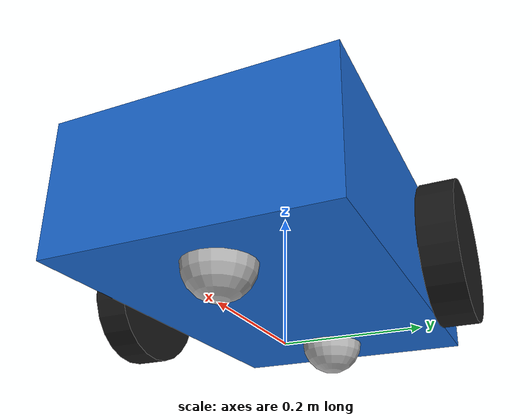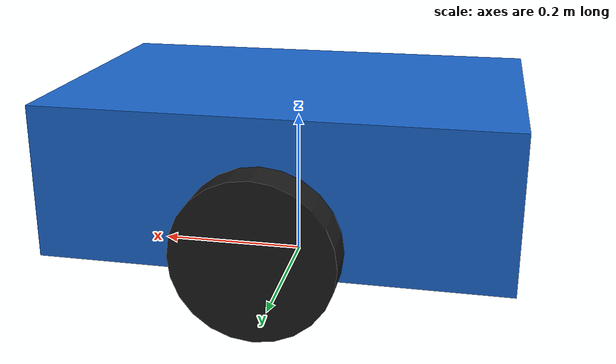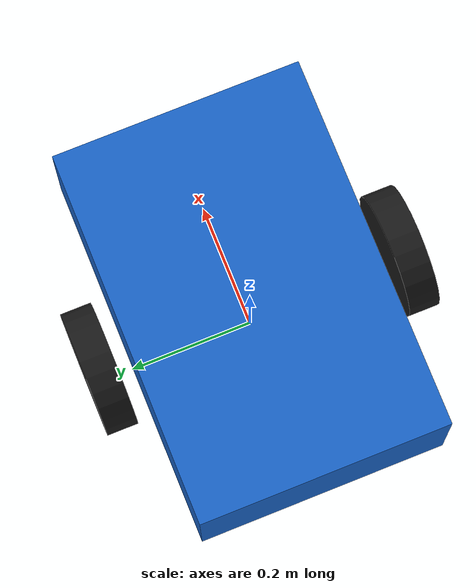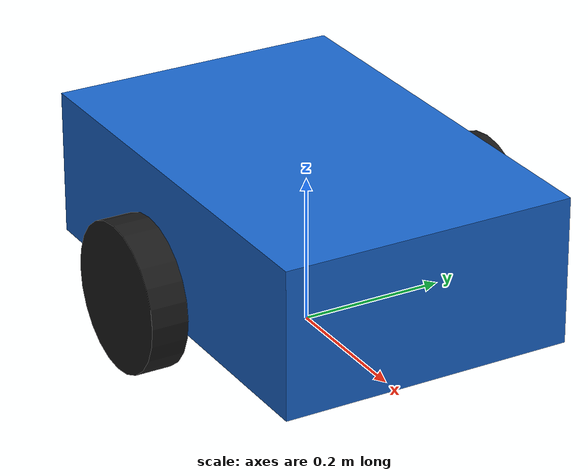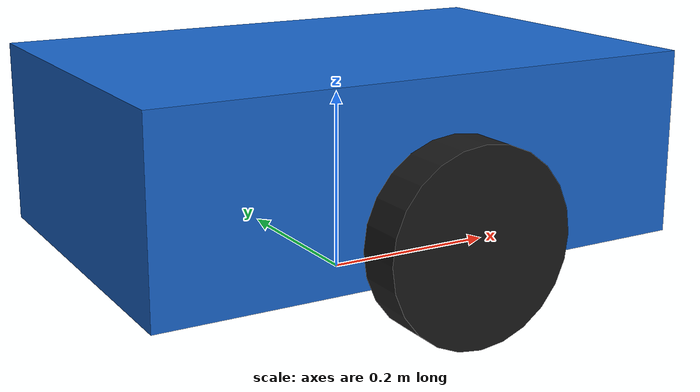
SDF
<?xml version="1.0"?>
<sdf version="1.9">
  <model name="robot">
    <link name="base_link">
      <pose>0 0 0.15 0 0 0</pose>
      <inertial><mass>10</mass><inertia><ixx>0.2</ixx><iyy>0.3</iyy><izz>0.4</izz></inertia></inertial>
      <collision name="c"><geometry><box><size>0.6 0.4 0.2</size></box></geometry></collision>
      <visual name="v"><geometry><box><size>0.6 0.4 0.2</size></box></geometry><material><ambient>0.1 0.4 0.8 1</ambient><diffuse>0.1 0.4 0.8 1</diffuse></material></visual>
    </link>
    <link name="left_wheel">
      <pose>0 0.25 0.1 -1.5707 0 0</pose>
      <inertial><mass>1</mass><inertia><ixx>0.005</ixx><iyy>0.005</iyy><izz>0.005</izz></inertia></inertial>
      <collision name="c"><geometry><cylinder><radius>0.1</radius><length>0.05</length></cylinder></geometry></collision>
      <visual name="v"><geometry><cylinder><radius>0.1</radius><length>0.05</length></cylinder></geometry><material><ambient>0.1 0.1 0.1 1</ambient><diffuse>0.1 0.1 0.1 1</diffuse></material></visual>
    </link>
    <link name="right_wheel">
      <pose>0 -0.25 0.1 -1.5707 0 0</pose>
      <inertial><mass>1</mass><inertia><ixx>0.005</ixx><iyy>0.005</iyy><izz>0.005</izz></inertia></inertial>
      <collision name="c"><geometry><cylinder><radius>0.1</radius><length>0.05</length></cylinder></geometry></collision>
      <visual name="v"><geometry><cylinder><radius>0.1</radius><length>0.05</length></cylinder></geometry><material><ambient>0.1 0.1 0.1 1</ambient><diffuse>0.1 0.1 0.1 1</diffuse></material></visual>
    </link>
    <link name="caster_front">
      <pose>0.2 0 0.05 0 0 0</pose>
      <inertial><mass>0.5</mass><inertia><ixx>0.0005</ixx><iyy>0.0005</iyy><izz>0.0005</izz></inertia></inertial>
      <collision name="c"><geometry><sphere><radius>0.05</radius></sphere></geometry><surface><friction><ode><mu>0</mu><mu2>0</mu2></ode></friction></surface></collision>
      <visual name="v"><geometry><sphere><radius>0.05</radius></sphere></geometry></visual>
    </link>
    <link name="caster_back">
      <pose>-0.2 0 0.05 0 0 0</pose>
      <inertial><mass>0.5</mass><inertia><ixx>0.0005</ixx><iyy>0.0005</iyy><izz>0.0005</izz></inertia></inertial>
      <collision name="c"><geometry><sphere><radius>0.05</radius></sphere></geometry><surface><friction><ode><mu>0</mu><mu2>0</mu2></ode></friction></surface></collision>
      <visual name="v"><geometry><sphere><radius>0.05</radius></sphere></geometry></visual>
    </link>
    <joint name="left_wheel_joint" type="revolute">
      <parent>base_link</parent><child>left_wheel</child>
      <axis><xyz>0 0 1</xyz></axis>
    </joint>
    <joint name="right_wheel_joint" type="revolute">
      <parent>base_link</parent><child>right_wheel</child>
      <axis><xyz>0 0 1</xyz></axis>
    </joint>
    <joint name="caster_front_joint" type="fixed"><parent>base_link</parent><child>caster_front</child></joint>
    <joint name="caster_back_joint" type="fixed"><parent>base_link</parent><child>caster_back</child></joint>
    <plugin filename="gz-sim-diff-drive-system" name="gz::sim::systems::DiffDrive">
      <left_joint>left_wheel_joint</left_joint>
      <right_joint>right_wheel_joint</right_joint>
      <wheel_separation>0.5</wheel_separation>
      <wheel_radius>0.1</wheel_radius>
      <odom_publish_frequency>20</odom_publish_frequency>
      <topic>/__NAME__/cmd_vel</topic>
      <odom_topic>/__NAME__/odom</odom_topic>
      <frame_id>__NAME__/odom</frame_id>
      <child_frame_id>__NAME__/base_link</child_frame_id>
    </plugin>
  </model>
</sdf>
